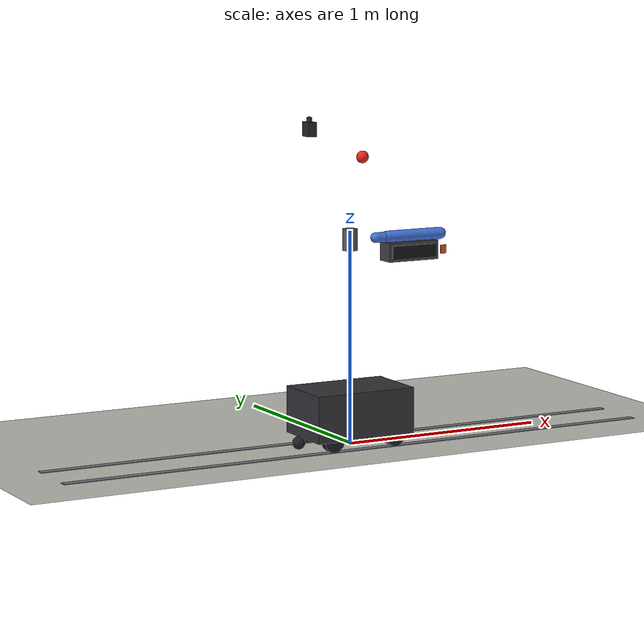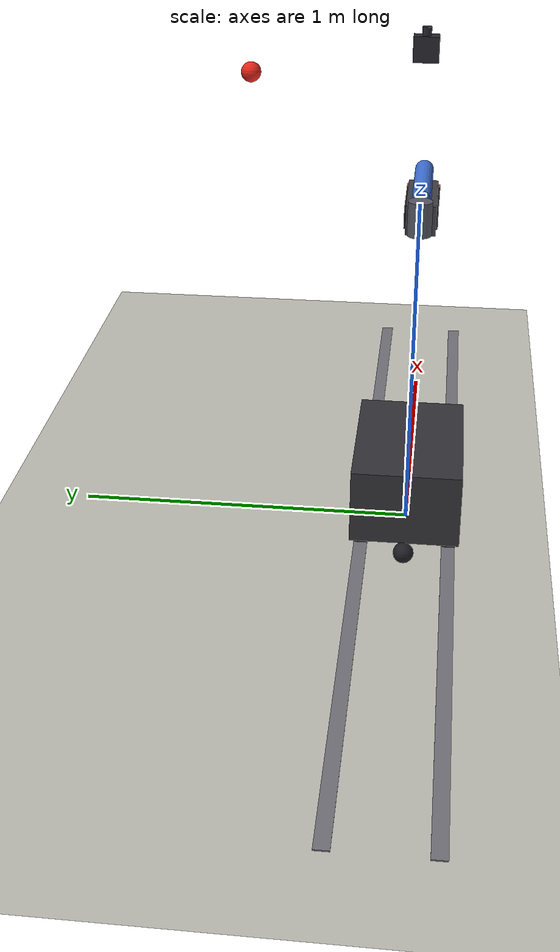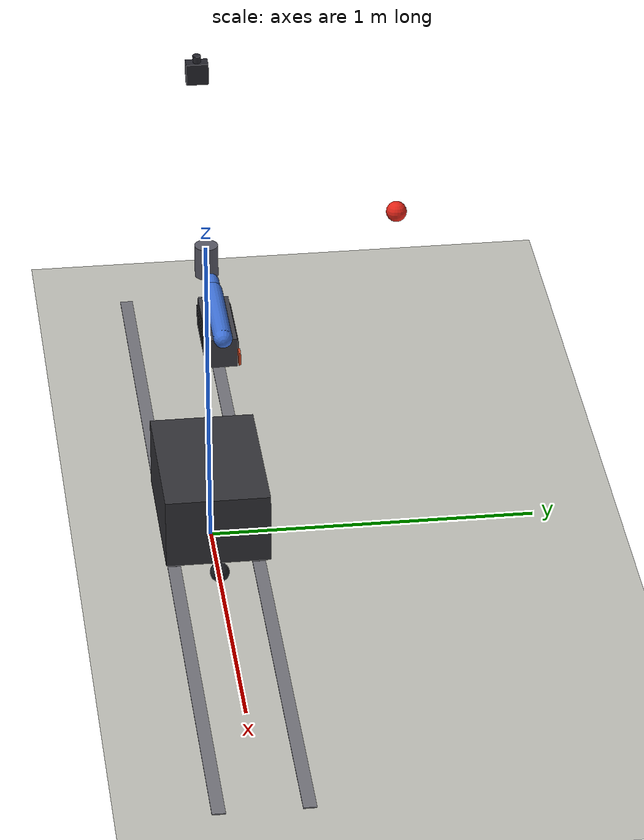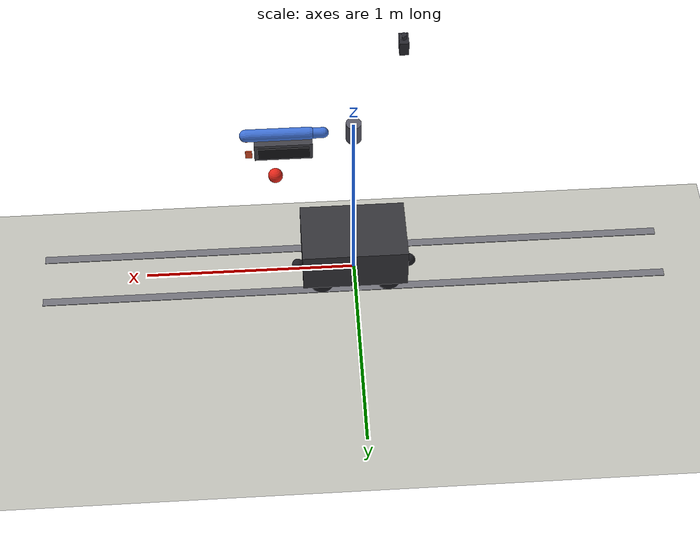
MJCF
<mujoco model="tomato_scara">
  <compiler angle="radian" autolimits="true"/>
  <option timestep="0.002" gravity="0 0 -9.81" integrator="implicitfast"/>
  <visual>
    <global offwidth="640" offheight="480"/>
  </visual>

  <asset>
    <texture type="skybox" builtin="gradient" rgb1="0.35 0.5 0.65" rgb2="0.05 0.05 0.08" width="512" height="512"/>
    <material name="mat_floor" rgba="0.75 0.75 0.72 1"/>
    <material name="mat_link" rgba="0.25 0.45 0.85 1"/>
    <material name="mat_column" rgba="0.35 0.35 0.4 1"/>
    <material name="mat_rail" rgba="0.2 0.2 0.22 1"/>
    <material name="mat_hand" rgba="0.25 0.25 0.28 1"/>
    <material name="mat_finger" rgba="0.85 0.3 0.15 1"/>
    <material name="mat_fruit" rgba="0.9 0.15 0.1 1"/>
    <material name="mat_belt" rgba="0.08 0.08 0.09 1"/>
    <material name="mat_wheel" rgba="0.12 0.12 0.14 1"/>
    <material name="mat_camera" rgba="0.15 0.15 0.18 1"/>
    <material name="mat_railbeam" rgba="0.45 0.45 0.48 1"/>
  </asset>

  <worldbody>
    <light pos="1.0 -0.5 2.5" dir="-0.3 0.15 -1" diffuse="0.9 0.9 0.9"/>
    <geom name="floor" type="plane" size="3 3 0.02" material="mat_floor"/>

    <geom name="rail_beam_l" type="box" size="1.5 0.02 0.02" pos="0 0.13 -0.02" material="mat_railbeam"/>
    <geom name="rail_beam_r" type="box" size="1.5 0.02 0.02" pos="0 -0.13 -0.02" material="mat_railbeam"/>

    <body name="rail_carriage" pos="0 0 0">
      <!-- No rail joint: the real machine drives on wheels (out of scope). -->

      <!-- INFERRED chassis envelope (documented parts fitted inside). -->
      <geom name="chassis" type="box" size="0.25 0.16 0.11" pos="0 0 0.16" material="mat_rail"/>

      <!-- 2 driven rail wheels (r=0.050, documented) + 2 INFERRED guide rollers. -->
      <geom name="wheel_front_l" type="cylinder" size="0.05 0.02" pos="0.16 0.13 0.05" euler="1.5708 0 0" material="mat_wheel"/>
      <geom name="wheel_front_r" type="cylinder" size="0.05 0.02" pos="0.16 -0.13 0.05" euler="1.5708 0 0" material="mat_wheel"/>
      <geom name="wheel_rear_l" type="cylinder" size="0.05 0.02" pos="-0.16 0.13 0.05" euler="1.5708 0 0" material="mat_wheel"/>
      <geom name="wheel_rear_r" type="cylinder" size="0.05 0.02" pos="-0.16 -0.13 0.05" euler="1.5708 0 0" material="mat_wheel"/>
      <geom name="caster_front" type="sphere" size="0.03" pos="0.27 0 0.03" material="mat_wheel"/>
      <geom name="caster_rear" type="sphere" size="0.03" pos="-0.27 0 0.03" material="mat_wheel"/>

      <!-- Lift stage origin at the vehicle center (robot_snapshot: world -> arm_lift_origin
           translation (0, 0, 0.960)); the shoulder yaw origin is +0.195 m along x. -->
      <body name="lift_column" pos="0 0 0.96">
        <joint name="lift" type="slide" axis="0 0 1" range="0 0.9725" damping="2.0" armature="0.1"/>
        <!-- lift column visual: INFERRED radius/height (no drawing). -->
        <geom name="lift_geom" type="cylinder" size="0.035 0.05" pos="0 0 0" material="mat_column"/>

        <body name="shoulder_footprint" euler="0 -1.5708 0">
          <body name="camera_mount" pos="0.5 0 0.211">
            <joint name="camera_yaw" type="hinge" axis="0 0 1" range="-1.5708 1.5708" damping="0.2"/>
            <!-- camera body/lens sizes are INFERRED (NYX650 enclosure not in repo). -->
            <geom name="camera_body" type="box" size="0.033 0.033 0.02" pos="0.02 0 0" material="mat_camera"/>
            <geom name="camera_lens" type="cylinder" size="0.012 0.015" pos="0.06 0 0" euler="0 1.5708 0" material="mat_camera"/>
          </body>
        </body>

        <body name="shoulder" pos="0.195 0 0">
          <joint name="shoulder_yaw" type="hinge" axis="0 0 -1" range="-2.36 2.36" damping="0.5"/>
          <geom name="link1" type="capsule" fromto="0 0 0 0.285 0 0" size="0.028" material="mat_link"/>

          <body name="elbow" pos="0.285 0 0">
            <joint name="elbow_yaw" type="hinge" axis="0 0 -1" range="-3.05 3.05" damping="0.5"/>
            <geom name="link2" type="capsule" fromto="0 0 0 -0.345 0 0" size="0.024" material="mat_link"/>

            <body name="wrist" pos="-0.345 0 0">
              <joint name="wrist_yaw" type="hinge" axis="0 0 -1" range="-6.1 6.1" damping="0.5"/>
              <geom name="link3" type="capsule" fromto="0 0 0 0.05 0 0" size="0.02" material="mat_link"/>  <!-- link radii are INFERRED visuals -->

              <body name="hand" pos="0.05 0 -0.07">
                <geom name="hand_body" type="box" size="0.13 0.045 0.045" pos="0.13 0 0" material="mat_hand"/>
                <!-- belt_l / belt_r (EPOS4 ID9/10, DJI M2006; tmt4-hardware.md):
                     hand side belts. Positions/radii are INFERRED (no drawing). -->
                <geom name="belt_l" type="box" size="0.115 0.004 0.03" pos="0.13 0.046 0" material="mat_belt"/>
                <geom name="belt_r" type="box" size="0.115 0.004 0.03" pos="0.13 -0.046 0" material="mat_belt"/>
                <geom name="finger_fixed" type="box" size="0.015 0.003 0.02" pos="0.285 0.048 0" material="mat_finger"/>
                <body name="jaw" pos="0.285 -0.048 0">
                  <joint name="gripper" type="slide" axis="0 1 0" range="0 0.0843" damping="0.2"/>
                  <geom name="finger_moving" type="box" size="0.015 0.003 0.02" pos="0 0 0" material="mat_finger"/>
                </body>
                <site name="eef_site" pos="0.16 0 0" size="0.006" rgba="0.1 1 0.1 1"/>
              </body>
            </body>
          </body>
        </body>
      </body>
    </body>

    <!-- Harvest target (mocap so the sim node can pin it to the recorded fruit). -->
    <body name="target_fruit" mocap="true" pos="0.3534742649644613 0.5227577420258906 1.275849107842993">
      <geom name="target_geom" type="sphere" size="0.03" material="mat_fruit" contype="0" conaffinity="0"/>
    </body>
  </worldbody>

  <actuator>
    <position name="lift_motor" joint="lift" kp="400" ctrlrange="0 0.9725"/>
    <position name="shoulder_motor" joint="shoulder_yaw" kp="80" ctrlrange="-2.36 2.36"/>
    <position name="elbow_motor" joint="elbow_yaw" kp="80" ctrlrange="-3.05 3.05"/>
    <position name="wrist_motor" joint="wrist_yaw" kp="60" ctrlrange="-6.1 6.1"/>
    <position name="gripper_motor" joint="gripper" kp="40" ctrlrange="0 0.0843"/>
  </actuator>
</mujoco>
